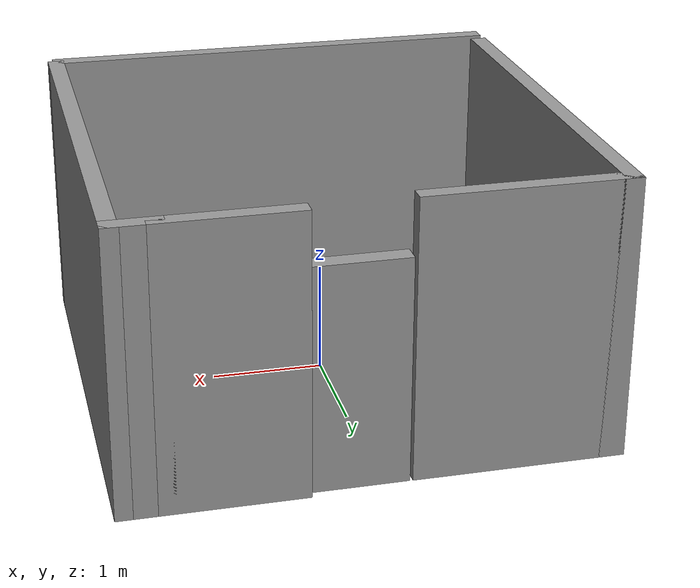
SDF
<?xml version='1.0'?>
<sdf version='1.7'>
  <model name='autonous'>
    <pose>0.036063 0.082045 0 0 -0 0</pose>
    <link name='Door_0'>
      <collision name='Door_0_Collision'>
        <geometry>
          <box>
            <size>0.9 0.17 2</size>
          </box>
        </geometry>
        <pose>0 0 1 0 -0 0</pose>
      </collision>
      <visual name='Door_0_Visual'>
        <pose>0 0 1 0 -0 0</pose>
        <geometry>
          <box>
            <size>0.9 0.17 2</size>
          </box>
        </geometry>
        <material>
          <script>
            <uri>file://media/materials/scripts/gazebo.material</uri>
            <name>Gazebo/Grey</name>
          </script>
        </material>
      </visual>
      <pose>0.168451 2.0013 0 0 -0 0</pose>
    </link>
    <link name='Wall_10'>
      <collision name='Wall_10_Collision'>
        <geometry>
          <box>
            <size>0.5 0.15 2.5</size>
          </box>
        </geometry>
        <pose>0 0 1.25 0 -0 0</pose>
      </collision>
      <visual name='Wall_10_Visual'>
        <pose>0 0 1.25 0 -0 0</pose>
        <geometry>
          <box>
            <size>0.5 0.15 2.5</size>
          </box>
        </geometry>
        <material>
          <script>
            <uri>file://media/materials/scripts/gazebo.material</uri>
            <name>Gazebo/Grey</name>
          </script>
          <ambient>1 1 1 1</ambient>
        </material>
        <meta>
          <layer>0</layer>
        </meta>
      </visual>
      <pose>1.90606 2.08175 0 0 -0 0</pose>
    </link>
    <link name='Wall_11'>
      <collision name='Wall_11_Collision'>
        <geometry>
          <box>
            <size>4.25 0.15 2.5</size>
          </box>
        </geometry>
        <pose>0 0 1.25 0 -0 0</pose>
      </collision>
      <visual name='Wall_11_Visual'>
        <pose>0 0 1.25 0 -0 0</pose>
        <geometry>
          <box>
            <size>4.25 0.15 2.5</size>
          </box>
        </geometry>
        <material>
          <script>
            <uri>file://media/materials/scripts/gazebo.material</uri>
            <name>Gazebo/Grey</name>
          </script>
          <ambient>1 1 1 1</ambient>
        </material>
        <meta>
          <layer>0</layer>
        </meta>
      </visual>
      <pose>2.08106 0.031755 0 0 -0 -1.5708</pose>
    </link>
    <link name='Wall_12'>
      <collision name='Wall_12_Collision'>
        <geometry>
          <box>
            <size>0.15 0.15 2.5</size>
          </box>
        </geometry>
        <pose>0 0 1.25 0 -0 0</pose>
      </collision>
      <visual name='Wall_12_Visual'>
        <pose>0 0 1.25 0 -0 0</pose>
        <geometry>
          <box>
            <size>0.15 0.15 2.5</size>
          </box>
        </geometry>
        <material>
          <script>
            <uri>file://media/materials/scripts/gazebo.material</uri>
            <name>Gazebo/Grey</name>
          </script>
          <ambient>1 1 1 1</ambient>
        </material>
        <meta>
          <layer>0</layer>
        </meta>
      </visual>
      <pose>2.08106 -2.01824 0 0 -0 0</pose>
    </link>
    <link name='Wall_22'>
      <collision name='Wall_22_Collision'>
        <geometry>
          <box>
            <size>0.25 0.15 2.5</size>
          </box>
        </geometry>
        <pose>0 0 1.25 0 -0 0</pose>
      </collision>
      <visual name='Wall_22_Visual'>
        <pose>0 0 1.25 0 -0 0</pose>
        <geometry>
          <box>
            <size>0.25 0.15 2.5</size>
          </box>
        </geometry>
        <material>
          <script>
            <uri>file://media/materials/scripts/gazebo.material</uri>
            <name>Gazebo/Grey</name>
          </script>
          <ambient>1 1 1 1</ambient>
        </material>
        <meta>
          <layer>0</layer>
        </meta>
      </visual>
      <pose>-2.03106 2.01408 0 0 -0 3.14159</pose>
    </link>
    <link name='Wall_23'>
      <collision name='Wall_23_Collision'>
        <geometry>
          <box>
            <size>4 0.15 2.5</size>
          </box>
        </geometry>
        <pose>0 0 1.25 0 -0 0</pose>
      </collision>
      <visual name='Wall_23_Visual'>
        <pose>0 0 1.25 0 -0 0</pose>
        <geometry>
          <box>
            <size>4 0.15 2.5</size>
          </box>
        </geometry>
        <material>
          <script>
            <uri>file://media/materials/scripts/gazebo.material</uri>
            <name>Gazebo/Grey</name>
          </script>
          <ambient>1 1 1 1</ambient>
        </material>
        <meta>
          <layer>0</layer>
        </meta>
      </visual>
      <pose>-2.08106 0.089076 0 0 -0 -1.5708</pose>
    </link>
    <link name='Wall_26'>
      <collision name='Wall_26_Collision'>
        <geometry>
          <box>
            <size>4.25 0.15 2.5</size>
          </box>
        </geometry>
        <pose>0 0 1.25 0 -0 0</pose>
      </collision>
      <visual name='Wall_26_Visual'>
        <pose>0 0 1.25 0 -0 0</pose>
        <geometry>
          <box>
            <size>4.25 0.15 2.5</size>
          </box>
        </geometry>
        <material>
          <script>
            <uri>file://media/materials/scripts/gazebo.material</uri>
            <name>Gazebo/Grey</name>
          </script>
          <ambient>1 1 1 1</ambient>
        </material>
        <meta>
          <layer>0</layer>
        </meta>
      </visual>
      <pose>-0.014156 -2.08175 0 0 -0 0</pose>
    </link>
    <link name='Wall_5'>
      <collision name='Wall_5_Collision'>
        <geometry>
          <box>
            <size>0.15 0.15 2.5</size>
          </box>
        </geometry>
        <pose>0 0 1.25 0 -0 0</pose>
      </collision>
      <visual name='Wall_5_Visual'>
        <pose>0 0 1.25 0 -0 0</pose>
        <geometry>
          <box>
            <size>0.15 0.15 2.5</size>
          </box>
        </geometry>
        <material>
          <script>
            <uri>file://media/materials/scripts/gazebo.material</uri>
            <name>Gazebo/Grey</name>
          </script>
          <ambient>1 1 1 1</ambient>
        </material>
        <meta>
          <layer>0</layer>
        </meta>
      </visual>
      <pose>-1.98106 2.01408 0 0 -0 0</pose>
    </link>
    <link name='Wall_6'>
      <collision name='Wall_6_Collision'>
        <geometry>
          <box>
            <size>0.15 0.15 2.5</size>
          </box>
        </geometry>
        <pose>0 0 1.25 0 -0 0</pose>
      </collision>
      <visual name='Wall_6_Visual'>
        <pose>0 0 1.25 0 -0 0</pose>
        <geometry>
          <box>
            <size>0.15 0.15 2.5</size>
          </box>
        </geometry>
        <material>
          <script>
            <uri>file://media/materials/scripts/gazebo.material</uri>
            <name>Gazebo/Grey</name>
          </script>
          <ambient>1 1 1 1</ambient>
        </material>
        <meta>
          <layer>0</layer>
        </meta>
      </visual>
      <pose>-1.98106 2.01408 0 0 -0 0</pose>
    </link>
    <link name='Wall_7'>
      <collision name='Wall_7_Collision'>
        <geometry>
          <box>
            <size>1.75 0.15 2.5</size>
          </box>
        </geometry>
        <pose>0 0 1.25 0 -0 0</pose>
      </collision>
      <visual name='Wall_7_Visual'>
        <pose>0 0 1.25 0 -0 0</pose>
        <geometry>
          <box>
            <size>1.75 0.15 2.5</size>
          </box>
        </geometry>
        <material>
          <script>
            <uri>file://media/materials/scripts/gazebo.material</uri>
            <name>Gazebo/Grey</name>
          </script>
          <ambient>1 1 1 1</ambient>
        </material>
        <meta>
          <layer>0</layer>
        </meta>
      </visual>
      <pose>-1.18106 2.01408 0 0 -0 0</pose>
    </link>
    <link name='Wall_9'>
      <collision name='Wall_9_Collision'>
        <geometry>
          <box>
            <size>1.25 0.15 2.5</size>
          </box>
        </geometry>
        <pose>0 0 1.25 0 -0 0</pose>
      </collision>
      <visual name='Wall_9_Visual'>
        <pose>0 0 1.25 0 -0 0</pose>
        <geometry>
          <box>
            <size>1.25 0.15 2.5</size>
          </box>
        </geometry>
        <material>
          <script>
            <uri>file://media/materials/scripts/gazebo.material</uri>
            <name>Gazebo/Grey</name>
          </script>
          <ambient>1 1 1 1</ambient>
        </material>
        <meta>
          <layer>0</layer>
        </meta>
      </visual>
      <pose>1.18106 2.08175 0 0 -0 0</pose>
    </link>
    <static>1</static>
  </model>
</sdf>
